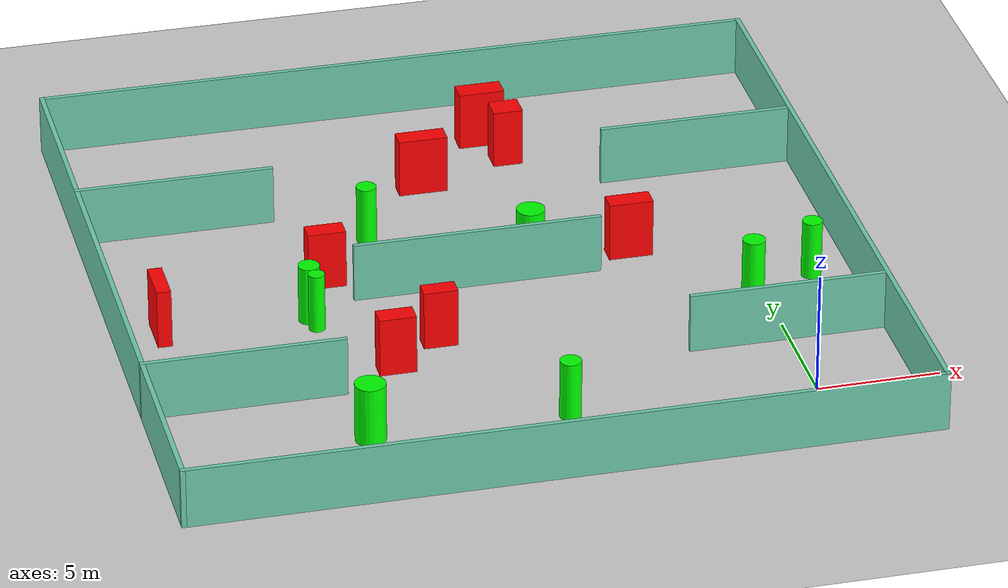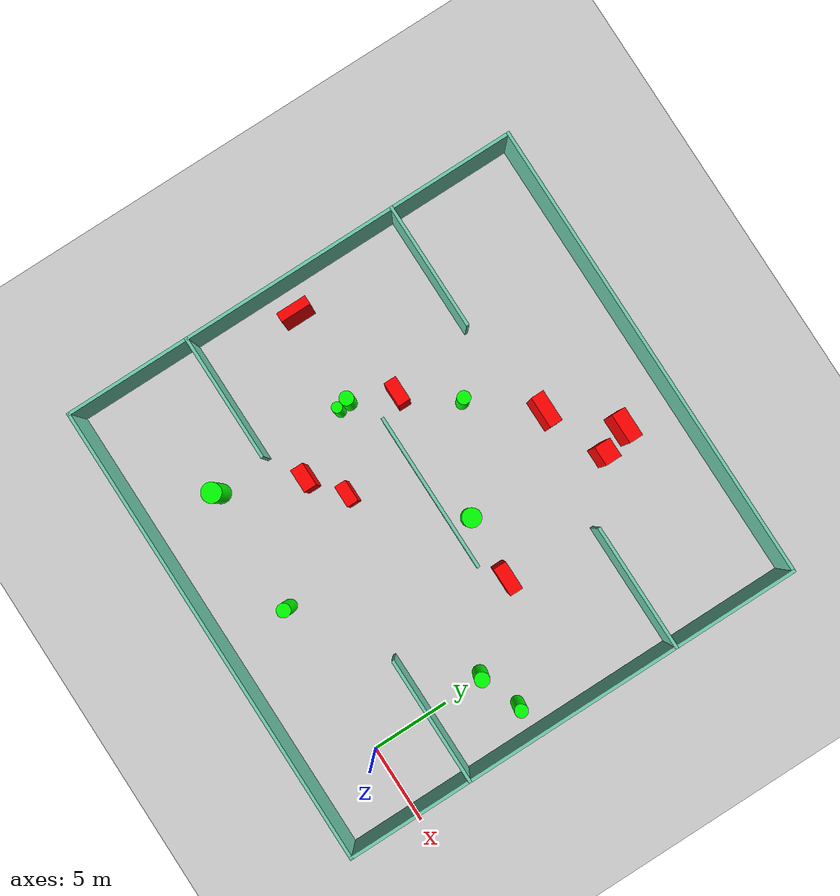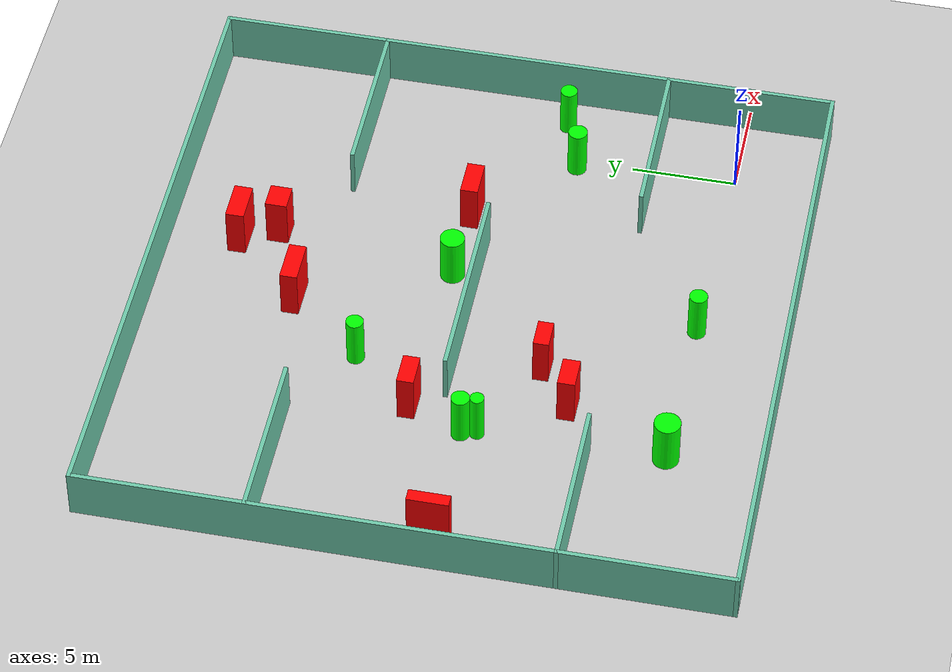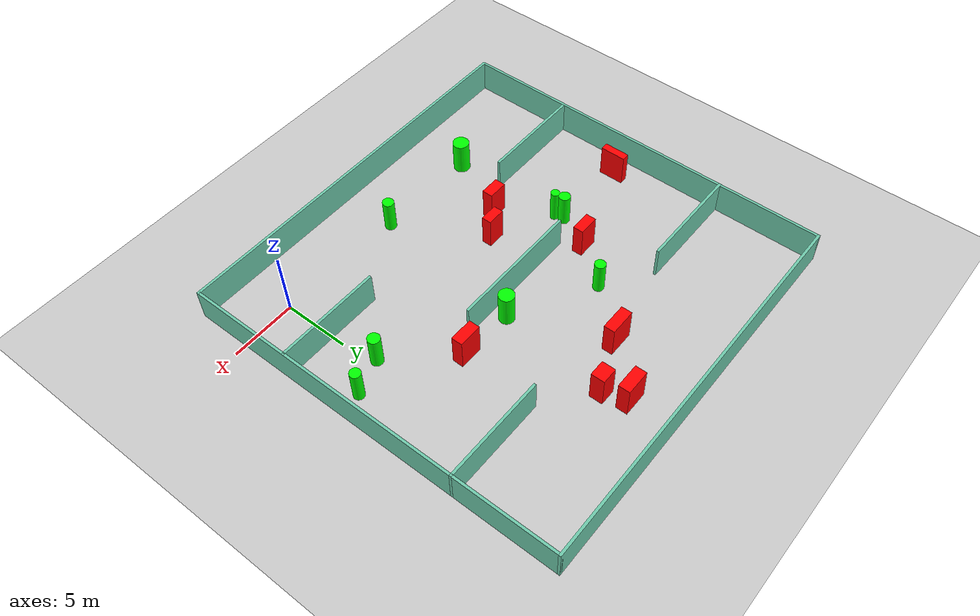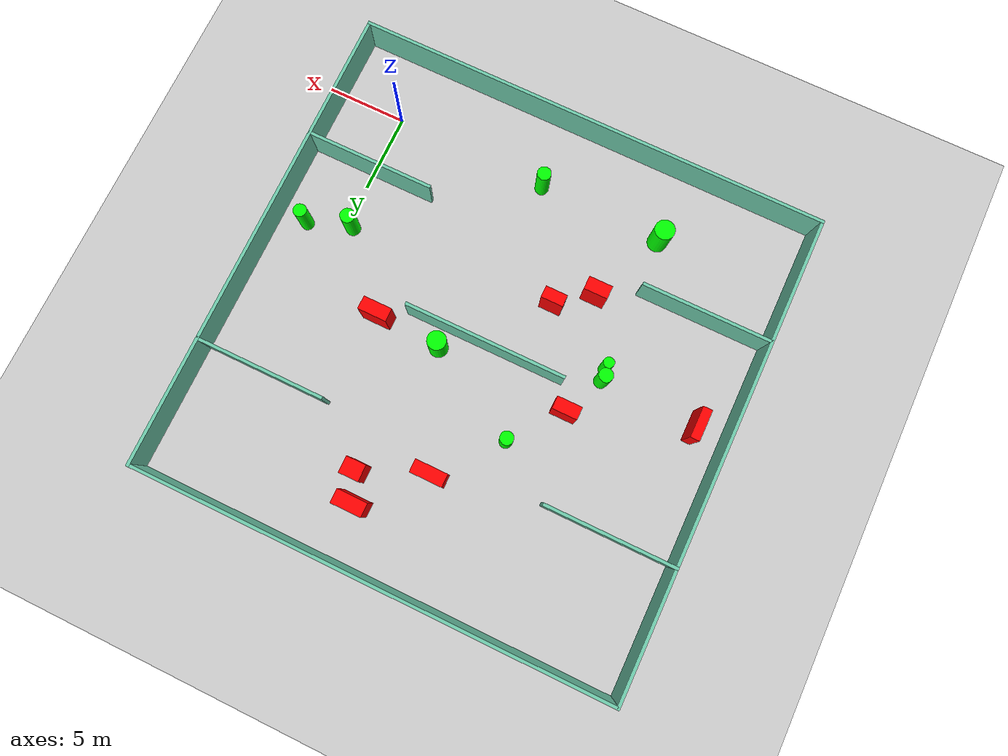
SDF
<sdf version="1.7">
 <world name="default">
  <light name="sun" type="directional">
   <pose>0 0 10 0 -0 0</pose>
   <diffuse>0.8 0.8 0.8 1</diffuse>
   <specular>0.2 0.2 0.2 1</specular>
   <attenuation>
    <range>1000</range>
    <constant>0.9</constant>
    <linear>0.01</linear>
    <quadratic>0.001</quadratic>
   </attenuation>
   <direction>-0.5 0.1 -0.9</direction>
   <spot><inner_angle>0</inner_angle><outer_angle>0</outer_angle><falloff>0</falloff></spot>
  </light>
  <model name="ground_plane">
   <static>1</static>
   <link name="link">
    <collision name="collision">
     <geometry><plane><normal>0 0 1</normal><size>100 100</size></plane></geometry>
     <surface>
      <contact><collide_bitmask>65535</collide_bitmask></contact>
      <friction><ode><mu>100</mu><mu2>50</mu2></ode></friction>
     </surface>
    </collision>
    <visual name="visual">
     <cast_shadows>0</cast_shadows>
     <geometry><plane><normal>0 0 1</normal><size>100 100</size></plane></geometry>
     <material>
      <script><uri>file://media/materials/scripts/gazebo.material</uri><name>Gazebo/Grey</name></script>
     </material>
    </visual>
   </link>
  </model>
  <gravity>0 0 -9.8</gravity>
  <magnetic_field>6e-06 2.3e-05 -4.2e-05</magnetic_field>
  <atmosphere type="adiabatic"/>
  <physics type="ode">
   <max_step_size>0.001</max_step_size>
   <real_time_factor>1</real_time_factor>
   <real_time_update_rate>1000</real_time_update_rate>
  </physics>
  <scene><ambient>0.4 0.4 0.4 1</ambient><background>0.7 0.7 0.7 1</background><shadows>1</shadows></scene>
  <spherical_coordinates>
   <surface_model>EARTH_WGS84</surface_model>
   <latitude_deg>0</latitude_deg>
   <longitude_deg>0</longitude_deg>
   <elevation>0</elevation>
   <heading_deg>0</heading_deg>
  </spherical_coordinates>
  <model name="my_base_walls">
   <link name="Wall_10">
    <collision name="Wall_10_Collision">
     <geometry><box><size>8.2 0.2 2.5</size></box></geometry>
     <pose>0 0 1.25 0 -0 0</pose>
    </collision>
    <visual name="Wall_10_Visual">
     <pose>0 0 1.25 0 -0 0</pose>
     <geometry><box><size>8.2 0.2 2.5</size></box></geometry>
     <material>
      <script><uri>file://media/materials/scripts/gazebo.material</uri><name>Gazebo/Grey</name></script>
      <ambient>0.435294 0.796078 0.67451 1</ambient>
     </material>
     <meta><layer>0</layer></meta>
    </visual>
    <pose>-11 -7 0 0 -0 0</pose>
   </link>
   <link name="Wall_12">
    <collision name="Wall_12_Collision">
     <geometry><box><size>8.2 0.2 2.5</size></box></geometry>
     <pose>0 0 1.25 0 -0 0</pose>
    </collision>
    <visual name="Wall_12_Visual">
     <pose>0 0 1.25 0 -0 0</pose>
     <geometry><box><size>8.2 0.2 2.5</size></box></geometry>
     <material>
      <script><uri>file://media/materials/scripts/gazebo.material</uri><name>Gazebo/Grey</name></script>
      <ambient>0.435294 0.796078 0.67451 1</ambient>
     </material>
     <meta><layer>0</layer></meta>
    </visual>
    <pose>-11 7 0 0 -0 0</pose>
   </link>
   <link name="Wall_14">
    <collision name="Wall_14_Collision">
     <geometry><box><size>8.2 0.2 2.5</size></box></geometry>
     <pose>0 0 1.25 0 -0 0</pose>
    </collision>
    <visual name="Wall_14_Visual">
     <pose>0 0 1.25 0 -0 0</pose>
     <geometry><box><size>8.2 0.2 2.5</size></box></geometry>
     <material>
      <script><uri>file://media/materials/scripts/gazebo.material</uri><name>Gazebo/Grey</name></script>
      <ambient>0.435294 0.796078 0.67451 1</ambient>
     </material>
     <meta><layer>0</layer></meta>
    </visual>
    <pose>11 7 0 0 -0 3.14159</pose>
   </link>
   <link name="Wall_16">
    <collision name="Wall_16_Collision">
     <geometry><box><size>10.2 0.2 2.5</size></box></geometry>
     <pose>0 0 1.25 0 -0 0</pose>
    </collision>
    <visual name="Wall_16_Visual">
     <pose>0 0 1.25 0 -0 0</pose>
     <geometry><box><size>10.2 0.2 2.5</size></box></geometry>
     <material>
      <script><uri>file://media/materials/scripts/gazebo.material</uri><name>Gazebo/Grey</name></script>
      <ambient>0.435294 0.796078 0.67451 1</ambient>
     </material>
     <meta><layer>0</layer></meta>
    </visual>
    <pose>0 0 0 0 -0 3.14159</pose>
   </link>
   <link name="Wall_2">
    <collision name="Wall_2_Collision">
     <geometry><box><size>30.2 0.2 2.5</size></box></geometry>
     <pose>0 0 1.25 0 -0 0</pose>
    </collision>
    <visual name="Wall_2_Visual">
     <pose>0 0 1.25 0 -0 0</pose>
     <geometry><box><size>30.2 0.2 2.5</size></box></geometry>
     <material>
      <script><uri>file://media/materials/scripts/gazebo.material</uri><name>Gazebo/Grey</name></script>
      <ambient>0.435294 0.796078 0.67451 1</ambient>
     </material>
     <meta><layer>0</layer></meta>
    </visual>
    <pose>0 -15 0 0 -0 3.14159</pose>
   </link>
   <link name="Wall_3">
    <collision name="Wall_3_Collision">
     <geometry><box><size>30.2 0.2 2.5</size></box></geometry>
     <pose>0 0 1.25 0 -0 0</pose>
    </collision>
    <visual name="Wall_3_Visual">
     <pose>0 0 1.25 0 -0 0</pose>
     <geometry><box><size>30.2 0.2 2.5</size></box></geometry>
     <material>
      <script><uri>file://media/materials/scripts/gazebo.material</uri><name>Gazebo/Grey</name></script>
      <ambient>0.435294 0.796078 0.67451 1</ambient>
     </material>
     <meta><layer>0</layer></meta>
    </visual>
    <pose>-15 0 0 0 -0 1.5708</pose>
   </link>
   <link name="Wall_4">
    <collision name="Wall_4_Collision">
     <geometry><box><size>30.2 0.2 2.5</size></box></geometry>
     <pose>0 0 1.25 0 -0 0</pose>
    </collision>
    <visual name="Wall_4_Visual">
     <pose>0 0 1.25 0 -0 0</pose>
     <geometry><box><size>30.2 0.2 2.5</size></box></geometry>
     <material>
      <script><uri>file://media/materials/scripts/gazebo.material</uri><name>Gazebo/Grey</name></script>
      <ambient>0.435294 0.796078 0.67451 1</ambient>
     </material>
     <meta><layer>0</layer></meta>
    </visual>
    <pose>0 15 0 0 -0 0</pose>
   </link>
   <link name="Wall_6">
    <collision name="Wall_6_Collision">
     <geometry><box><size>30.2 0.2 2.5</size></box></geometry>
     <pose>0 0 1.25 0 -0 0</pose>
    </collision>
    <visual name="Wall_6_Visual">
     <pose>0 0 1.25 0 -0 0</pose>
     <geometry><box><size>30.2 0.2 2.5</size></box></geometry>
     <material>
      <script><uri>file://media/materials/scripts/gazebo.material</uri><name>Gazebo/Grey</name></script>
      <ambient>0.435294 0.796078 0.67451 1</ambient>
     </material>
     <meta><layer>0</layer></meta>
    </visual>
    <pose>15 0 0 0 -0 1.5708</pose>
   </link>
   <link name="Wall_8">
    <collision name="Wall_8_Collision">
     <geometry><box><size>8.2 0.2 2.5</size></box></geometry>
     <pose>0 0 1.25 0 -0 0</pose>
    </collision>
    <visual name="Wall_8_Visual">
     <pose>0 0 1.25 0 -0 0</pose>
     <geometry><box><size>8.2 0.2 2.5</size></box></geometry>
     <material>
      <script><uri>file://media/materials/scripts/gazebo.material</uri><name>Gazebo/Grey</name></script>
      <ambient>0.435294 0.796078 0.67451 1</ambient>
     </material>
     <meta><layer>0</layer></meta>
    </visual>
    <pose>11 -7 0 0 -0 3.14159</pose>
   </link>
   <static>1</static>
   <pose>-11 11 0 0 -0 0</pose>
  </model>
  <model name="cylinder1">
   <static>1</static>
   <link name="link">
    <inertial>
     <mass>1</mass>
     <inertia><ixx>0.5</ixx><ixy>0</ixy><ixz>0</ixz><iyy>0.5</iyy><iyz>0</iyz><izz>1</izz></inertia>
    </inertial>
    <collision name="collision">
     <geometry><cylinder><radius>0.43635910739655304</radius><length>2.5</length></cylinder></geometry>
    </collision>
    <visual name="visual">
     <geometry><cylinder><radius>0.43635910739655304</radius><length>2.5</length></cylinder></geometry>
     <material>
      <ambient>0 1 0 1</ambient>
      <diffuse>0 1 0 1</diffuse>
      <specular>0.1 0.1 0.1 1</specular>
      <emissive>0 0 0 0</emissive>
     </material>
    </visual>
   </link>
   <pose>-18.152428520734478 9.873192877149386 1.25 0 0 0</pose>
  </model>
  <model name="cylinder2">
   <static>1</static>
   <link name="link">
    <inertial>
     <mass>1</mass>
     <inertia><ixx>0.5</ixx><ixy>0</ixy><ixz>0</ixz><iyy>0.5</iyy><iyz>0</iyz><izz>1</izz></inertia>
    </inertial>
    <collision name="collision">
     <geometry><cylinder><radius>0.4322672824720524</radius><length>2.5</length></cylinder></geometry>
    </collision>
    <visual name="visual">
     <geometry><cylinder><radius>0.4322672824720524</radius><length>2.5</length></cylinder></geometry>
     <material>
      <ambient>0 1 0 1</ambient>
      <diffuse>0 1 0 1</diffuse>
      <specular>0.1 0.1 0.1 1</specular>
      <emissive>0 0 0 0</emissive>
     </material>
    </visual>
   </link>
   <pose>-9.874020775007624 0.3194046694477901 1.25 0 0 0</pose>
  </model>
  <model name="cylinder3">
   <static>1</static>
   <link name="link">
    <inertial>
     <mass>1</mass>
     <inertia><ixx>0.5</ixx><ixy>0</ixy><ixz>0</ixz><iyy>0.5</iyy><iyz>0</iyz><izz>1</izz></inertia>
    </inertial>
    <collision name="collision">
     <geometry><cylinder><radius>0.46135181474033937</radius><length>2.5</length></cylinder></geometry>
    </collision>
    <visual name="visual">
     <geometry><cylinder><radius>0.46135181474033937</radius><length>2.5</length></cylinder></geometry>
     <material>
      <ambient>0 1 0 1</ambient>
      <diffuse>0 1 0 1</diffuse>
      <specular>0.1 0.1 0.1 1</specular>
      <emissive>0 0 0 0</emissive>
     </material>
    </visual>
   </link>
   <pose>-0.4432123449918812 7.701427402018991 1.25 0 0 0</pose>
  </model>
  <model name="cylinder4">
   <static>1</static>
   <link name="link">
    <inertial>
     <mass>1</mass>
     <inertia><ixx>0.5</ixx><ixy>0</ixy><ixz>0</ixz><iyy>0.5</iyy><iyz>0</iyz><izz>1</izz></inertia>
    </inertial>
    <collision name="collision">
     <geometry><cylinder><radius>0.6204046185763721</radius><length>2.5</length></cylinder></geometry>
    </collision>
    <visual name="visual">
     <geometry><cylinder><radius>0.6204046185763721</radius><length>2.5</length></cylinder></geometry>
     <material>
      <ambient>0 1 0 1</ambient>
      <diffuse>0 1 0 1</diffuse>
      <specular>0.1 0.1 0.1 1</specular>
      <emissive>0 0 0 0</emissive>
     </material>
    </visual>
   </link>
   <pose>-17.774313404086055 0.4637661540731468 1.25 0 0 0</pose>
  </model>
  <model name="cylinder5">
   <static>1</static>
   <link name="link">
    <inertial>
     <mass>1</mass>
     <inertia><ixx>0.5</ixx><ixy>0</ixy><ixz>0</ixz><iyy>0.5</iyy><iyz>0</iyz><izz>1</izz></inertia>
    </inertial>
    <collision name="collision">
     <geometry><cylinder><radius>0.5865507701009991</radius><length>2.5</length></cylinder></geometry>
    </collision>
    <visual name="visual">
     <geometry><cylinder><radius>0.5865507701009991</radius><length>2.5</length></cylinder></geometry>
     <material>
      <ambient>0 1 0 1</ambient>
      <diffuse>0 1 0 1</diffuse>
      <specular>0.1 0.1 0.1 1</specular>
      <emissive>0 0 0 0</emissive>
     </material>
    </visual>
   </link>
   <pose>-8.508947301006387 12.208093044645473 1.25 0 0 0</pose>
  </model>
  <model name="cylinder6">
   <static>1</static>
   <link name="link">
    <inertial>
     <mass>1</mass>
     <inertia><ixx>0.5</ixx><ixy>0</ixy><ixz>0</ixz><iyy>0.5</iyy><iyz>0</iyz><izz>1</izz></inertia>
    </inertial>
    <collision name="collision">
     <geometry><cylinder><radius>0.40921317542600666</radius><length>2.5</length></cylinder></geometry>
    </collision>
    <visual name="visual">
     <geometry><cylinder><radius>0.40921317542600666</radius><length>2.5</length></cylinder></geometry>
     <material>
      <ambient>0 1 0 1</ambient>
      <diffuse>0 1 0 1</diffuse>
      <specular>0.1 0.1 0.1 1</specular>
      <emissive>0 0 0 0</emissive>
     </material>
    </visual>
   </link>
   <pose>2.248844522013961 8.620051824935738 1.25 0 0 0</pose>
  </model>
  <model name="cylinder7">
   <static>1</static>
   <link name="link">
    <inertial>
     <mass>1</mass>
     <inertia><ixx>0.5</ixx><ixy>0</ixy><ixz>0</ixz><iyy>0.5</iyy><iyz>0</iyz><izz>1</izz></inertia>
    </inertial>
    <collision name="collision">
     <geometry><cylinder><radius>0.41359296530103595</radius><length>2.5</length></cylinder></geometry>
    </collision>
    <visual name="visual">
     <geometry><cylinder><radius>0.41359296530103595</radius><length>2.5</length></cylinder></geometry>
     <material>
      <ambient>0 1 0 1</ambient>
      <diffuse>0 1 0 1</diffuse>
      <specular>0.1 0.1 0.1 1</specular>
      <emissive>0 0 0 0</emissive>
     </material>
    </visual>
   </link>
   <pose>-14.545319324012464 15.556127364345883 1.25 0 0 0</pose>
  </model>
  <model name="cylinder8">
   <static>1</static>
   <link name="link">
    <inertial>
     <mass>1</mass>
     <inertia><ixx>0.5</ixx><ixy>0</ixy><ixz>0</ixz><iyy>0.5</iyy><iyz>0</iyz><izz>1</izz></inertia>
    </inertial>
    <collision name="collision">
     <geometry><cylinder><radius>0.33259051344854695</radius><length>2.5</length></cylinder></geometry>
    </collision>
    <visual name="visual">
     <geometry><cylinder><radius>0.33259051344854695</radius><length>2.5</length></cylinder></geometry>
     <material>
      <ambient>0 1 0 1</ambient>
      <diffuse>0 1 0 1</diffuse>
      <specular>0.1 0.1 0.1 1</specular>
      <emissive>0 0 0 0</emissive>
     </material>
    </visual>
   </link>
   <pose>-18.004790097982003 9.134833861057956 1.25 0 0 0</pose>
  </model>
  <model name="box1">
   <static>1</static>
   <link name="link">
    <inertial>
     <mass>1</mass>
     <inertia><ixx>0.083</ixx><ixy>0</ixy><ixz>0</ixz><iyy>0.083</iyy><iyz>0</iyz><izz>0.083</izz></inertia>
    </inertial>
    <collision name="collision">
     <geometry><box><size>1.9053411994349403 0.8834181981330662 2.5</size></box></geometry>
    </collision>
    <visual name="visual">
     <geometry><box><size>1.9053411994349403 0.8834181981330662 2.5</size></box></geometry>
     <material>
      <ambient>1 0 0 1</ambient>
      <diffuse>1 0 0 1</diffuse>
      <specular>0.1 0.1 0.1 1</specular>
      <emissive>0 0 0 0</emissive>
     </material>
    </visual>
    <sensor name="my_contact" type="contact">
     <contact><collision>box_collision</collision><topic>__default_topic__</topic></contact>
    </sensor>
   </link>
   <pose>-8.14026274472728 22.56881497662443 1.25 0 0 0</pose>
  </model>
  <model name="box2">
   <static>1</static>
   <link name="link">
    <inertial>
     <mass>1</mass>
     <inertia><ixx>0.083</ixx><ixy>0</ixy><ixz>0</ixz><iyy>0.083</iyy><iyz>0</iyz><izz>0.083</izz></inertia>
    </inertial>
    <collision name="collision">
     <geometry><box><size>1.4901306177735063 0.8235953319024474 2.5</size></box></geometry>
    </collision>
    <visual name="visual">
     <geometry><box><size>1.4901306177735063 0.8235953319024474 2.5</size></box></geometry>
     <material>
      <ambient>1 0 0 1</ambient>
      <diffuse>1 0 0 1</diffuse>
      <specular>0.1 0.1 0.1 1</specular>
      <emissive>0 0 0 0</emissive>
     </material>
    </visual>
    <sensor name="my_contact" type="contact">
     <contact><collision>box_collision</collision><topic>__default_topic__</topic></contact>
    </sensor>
   </link>
   <pose>-15.650543813002336 5.3480061739132925 1.25 0 0 0</pose>
  </model>
  <model name="box3">
   <static>1</static>
   <link name="link">
    <inertial>
     <mass>1</mass>
     <inertia><ixx>0.083</ixx><ixy>0</ixy><ixz>0</ixz><iyy>0.083</iyy><iyz>0</iyz><izz>0.083</izz></inertia>
    </inertial>
    <collision name="collision">
     <geometry><box><size>1.3860651948550178 0.7377085368204943 2.5</size></box></geometry>
    </collision>
    <visual name="visual">
     <geometry><box><size>1.3860651948550178 0.7377085368204943 2.5</size></box></geometry>
     <material>
      <ambient>1 0 0 1</ambient>
      <diffuse>1 0 0 1</diffuse>
      <specular>0.1 0.1 0.1 1</specular>
      <emissive>0 0 0 0</emissive>
     </material>
    </visual>
    <sensor name="my_contact" type="contact">
     <contact><collision>box_collision</collision><topic>__default_topic__</topic></contact>
    </sensor>
   </link>
   <pose>-13.549512541899334 6.919054570798194 1.25 0 0 0</pose>
  </model>
  <model name="box4">
   <static>1</static>
   <link name="link">
    <inertial>
     <mass>1</mass>
     <inertia><ixx>0.083</ixx><ixy>0</ixy><ixz>0</ixz><iyy>0.083</iyy><iyz>0</iyz><izz>0.083</izz></inertia>
    </inertial>
    <collision name="collision">
     <geometry><box><size>1.232821433491446 1.0358933588249284 2.5</size></box></geometry>
    </collision>
    <visual name="visual">
     <geometry><box><size>1.232821433491446 1.0358933588249284 2.5</size></box></geometry>
     <material>
      <ambient>1 0 0 1</ambient>
      <diffuse>1 0 0 1</diffuse>
      <specular>0.1 0.1 0.1 1</specular>
      <emissive>0 0 0 0</emissive>
     </material>
    </visual>
    <sensor name="my_contact" type="contact">
     <contact><collision>box_collision</collision><topic>__default_topic__</topic></contact>
    </sensor>
   </link>
   <pose>-7.453997860758715 20.80868385079437 1.25 0 0 0</pose>
  </model>
  <model name="box5">
   <static>1</static>
   <link name="link">
    <inertial>
     <mass>1</mass>
     <inertia><ixx>0.083</ixx><ixy>0</ixy><ixz>0</ixz><iyy>0.083</iyy><iyz>0</iyz><izz>0.083</izz></inertia>
    </inertial>
    <collision name="collision">
     <geometry><box><size>0.5805212625013567 1.9406866315418165 2.5</size></box></geometry>
    </collision>
    <visual name="visual">
     <geometry><box><size>0.5805212625013567 1.9406866315418165 2.5</size></box></geometry>
     <material>
      <ambient>1 0 0 1</ambient>
      <diffuse>1 0 0 1</diffuse>
      <specular>0.1 0.1 0.1 1</specular>
      <emissive>0 0 0 0</emissive>
     </material>
    </visual>
    <sensor name="my_contact" type="contact">
     <contact><collision>box_collision</collision><topic>__default_topic__</topic></contact>
    </sensor>
   </link>
   <pose>-24.140889926160913 10.092767374889839 1.25 0 0 0</pose>
  </model>
  <model name="box6">
   <static>1</static>
   <link name="link">
    <inertial>
     <mass>1</mass>
     <inertia><ixx>0.083</ixx><ixy>0</ixy><ixz>0</ixz><iyy>0.083</iyy><iyz>0</iyz><izz>0.083</izz></inertia>
    </inertial>
    <collision name="collision">
     <geometry><box><size>1.8077428052926305 0.8363314215018216 2.5</size></box></geometry>
    </collision>
    <visual name="visual">
     <geometry><box><size>1.8077428052926305 0.8363314215018216 2.5</size></box></geometry>
     <material>
      <ambient>1 0 0 1</ambient>
      <diffuse>1 0 0 1</diffuse>
      <specular>0.1 0.1 0.1 1</specular>
      <emissive>0 0 0 0</emissive>
     </material>
    </visual>
    <sensor name="my_contact" type="contact">
     <contact><collision>box_collision</collision><topic>__default_topic__</topic></contact>
    </sensor>
   </link>
   <pose>-4.452548106427258 12.05610969834774 1.25 0 0 0</pose>
  </model>
  <model name="box7">
   <static>1</static>
   <link name="link">
    <inertial>
     <mass>1</mass>
     <inertia><ixx>0.083</ixx><ixy>0</ixy><ixz>0</ixz><iyy>0.083</iyy><iyz>0</iyz><izz>0.083</izz></inertia>
    </inertial>
    <collision name="collision">
     <geometry><box><size>1.5618147358560497 0.7936783353729759 2.5</size></box></geometry>
    </collision>
    <visual name="visual">
     <geometry><box><size>1.5618147358560497 0.7936783353729759 2.5</size></box></geometry>
     <material>
      <ambient>1 0 0 1</ambient>
      <diffuse>1 0 0 1</diffuse>
      <specular>0.1 0.1 0.1 1</specular>
      <emissive>0 0 0 0</emissive>
     </material>
    </visual>
    <sensor name="my_contact" type="contact">
     <contact><collision>box_collision</collision><topic>__default_topic__</topic></contact>
    </sensor>
   </link>
   <pose>-16.919179909643688 12.530846743202249 1.25 0 0 0</pose>
  </model>
  <model name="box8">
   <static>1</static>
   <link name="link">
    <inertial>
     <mass>1</mass>
     <inertia><ixx>0.083</ixx><ixy>0</ixy><ixz>0</ixz><iyy>0.083</iyy><iyz>0</iyz><izz>0.083</izz></inertia>
    </inertial>
    <collision name="collision">
     <geometry><box><size>2.023358119441812 0.8242230326908772 2.5</size></box></geometry>
    </collision>
    <visual name="visual">
     <geometry><box><size>2.023358119441812 0.8242230326908772 2.5</size></box></geometry>
     <material>
      <ambient>1 0 0 1</ambient>
      <diffuse>1 0 0 1</diffuse>
      <specular>0.1 0.1 0.1 1</specular>
      <emissive>0 0 0 0</emissive>
     </material>
    </visual>
    <sensor name="my_contact" type="contact">
     <contact><collision>box_collision</collision><topic>__default_topic__</topic></contact>
    </sensor>
   </link>
   <pose>-11.416560940532104 19.191687883387996 1.25 0 0 0</pose>
  </model>
 </world>
</sdf>
